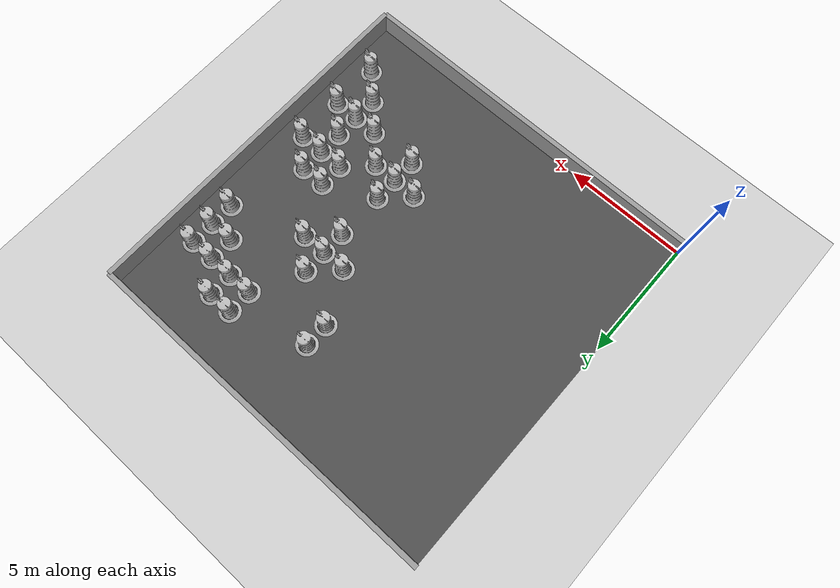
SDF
<sdf version="1.4">
 <world name="default">
  <include><uri>model://ground_plane</uri></include>
  <include><uri>model://sun</uri></include>
  <model name="grey_wall">
   <static>1</static>
   <link name="link">
    <visual name="visual">
     <cast_shadows>0</cast_shadows>
     <geometry><box><size>15 0.2 2</size></box></geometry>
     <material>
      <script>
       <uri>model://grey_wall/materials/scripts</uri>
       <uri>model://grey_wall/materials/textures</uri>
       <name>vrc/grey_wall</name>
      </script>
     </material>
    </visual>
   </link>
   <pose>7.5 0 0 0 0 0</pose>
  </model>
  <model name="grey_wall">
   <static>1</static>
   <link name="link">
    <visual name="visual">
     <cast_shadows>0</cast_shadows>
     <geometry><box><size>15 0.2 2</size></box></geometry>
     <material>
      <script>
       <uri>model://grey_wall/materials/scripts</uri>
       <uri>model://grey_wall/materials/textures</uri>
       <name>vrc/grey_wall</name>
      </script>
     </material>
    </visual>
   </link>
   <pose>15 7.5 0 0 0 -1.57079632679</pose>
  </model>
  <model name="grey_wall">
   <static>1</static>
   <link name="link">
    <visual name="visual">
     <cast_shadows>0</cast_shadows>
     <geometry><box><size>15 0.2 2</size></box></geometry>
     <material>
      <script>
       <uri>model://grey_wall/materials/scripts</uri>
       <uri>model://grey_wall/materials/textures</uri>
       <name>vrc/grey_wall</name>
      </script>
     </material>
    </visual>
   </link>
   <pose>7.5 15 0 0 0 3.14159265359</pose>
  </model>
  <model name="asphalt_plane">
   <static>1</static>
   <link name="link">
    <visual name="visual">
     <cast_shadows>0</cast_shadows>
     <geometry><box><size>15 15 0.1</size></box></geometry>
     <material>
      <script>
       <uri>model://asphalt_plane/materials/scripts</uri>
       <uri>model://asphalt_plane/materials/textures</uri>
       <name>vrc/asphalt</name>
      </script>
     </material>
    </visual>
   </link>
   <pose>7.5 7.5 0 0 0 0</pose>
  </model>
  <model name="Construction Barrel">
   <link name="link">
    <collision name="collision">
     <geometry>
      <mesh><uri>model://construction_barrel/meshes/construction_barrel.dae</uri><scale>1 1 1</scale></mesh>
     </geometry>
    </collision>
    <visual name="visual">
     <geometry><mesh><uri>model://construction_barrel/meshes/construction_barrel.dae</uri></mesh></geometry>
    </visual>
   </link>
   <pose>8 11 0 0 0 0</pose>
   <static>1</static>
  </model>
  <model name="Construction Barrel">
   <link name="link">
    <collision name="collision">
     <geometry>
      <mesh><uri>model://construction_barrel/meshes/construction_barrel.dae</uri><scale>1 1 1</scale></mesh>
     </geometry>
    </collision>
    <visual name="visual">
     <geometry><mesh><uri>model://construction_barrel/meshes/construction_barrel.dae</uri></mesh></geometry>
    </visual>
   </link>
   <pose>8 12 0 0 0 0</pose>
   <static>1</static>
  </model>
  <model name="Construction Barrel">
   <link name="link">
    <collision name="collision">
     <geometry>
      <mesh><uri>model://construction_barrel/meshes/construction_barrel.dae</uri><scale>1 1 1</scale></mesh>
     </geometry>
    </collision>
    <visual name="visual">
     <geometry><mesh><uri>model://construction_barrel/meshes/construction_barrel.dae</uri></mesh></geometry>
    </visual>
   </link>
   <pose>9 5 0 0 0 0</pose>
   <static>1</static>
  </model>
  <model name="Construction Barrel">
   <link name="link">
    <collision name="collision">
     <geometry>
      <mesh><uri>model://construction_barrel/meshes/construction_barrel.dae</uri><scale>1 1 1</scale></mesh>
     </geometry>
    </collision>
    <visual name="visual">
     <geometry><mesh><uri>model://construction_barrel/meshes/construction_barrel.dae</uri></mesh></geometry>
    </visual>
   </link>
   <pose>9 9 0 0 0 0</pose>
   <static>1</static>
  </model>
  <model name="Construction Barrel">
   <link name="link">
    <collision name="collision">
     <geometry>
      <mesh><uri>model://construction_barrel/meshes/construction_barrel.dae</uri><scale>1 1 1</scale></mesh>
     </geometry>
    </collision>
    <visual name="visual">
     <geometry><mesh><uri>model://construction_barrel/meshes/construction_barrel.dae</uri></mesh></geometry>
    </visual>
   </link>
   <pose>10 4 0 0 0 0</pose>
   <static>1</static>
  </model>
  <model name="Construction Barrel">
   <link name="link">
    <collision name="collision">
     <geometry>
      <mesh><uri>model://construction_barrel/meshes/construction_barrel.dae</uri><scale>1 1 1</scale></mesh>
     </geometry>
    </collision>
    <visual name="visual">
     <geometry><mesh><uri>model://construction_barrel/meshes/construction_barrel.dae</uri></mesh></geometry>
    </visual>
   </link>
   <pose>10 5 0 0 0 0</pose>
   <static>1</static>
  </model>
  <model name="Construction Barrel">
   <link name="link">
    <collision name="collision">
     <geometry>
      <mesh><uri>model://construction_barrel/meshes/construction_barrel.dae</uri><scale>1 1 1</scale></mesh>
     </geometry>
    </collision>
    <visual name="visual">
     <geometry><mesh><uri>model://construction_barrel/meshes/construction_barrel.dae</uri></mesh></geometry>
    </visual>
   </link>
   <pose>10 6 0 0 0 0</pose>
   <static>1</static>
  </model>
  <model name="Construction Barrel">
   <link name="link">
    <collision name="collision">
     <geometry>
      <mesh><uri>model://construction_barrel/meshes/construction_barrel.dae</uri><scale>1 1 1</scale></mesh>
     </geometry>
    </collision>
    <visual name="visual">
     <geometry><mesh><uri>model://construction_barrel/meshes/construction_barrel.dae</uri></mesh></geometry>
    </visual>
   </link>
   <pose>10 8 0 0 0 0</pose>
   <static>1</static>
  </model>
  <model name="Construction Barrel">
   <link name="link">
    <collision name="collision">
     <geometry>
      <mesh><uri>model://construction_barrel/meshes/construction_barrel.dae</uri><scale>1 1 1</scale></mesh>
     </geometry>
    </collision>
    <visual name="visual">
     <geometry><mesh><uri>model://construction_barrel/meshes/construction_barrel.dae</uri></mesh></geometry>
    </visual>
   </link>
   <pose>10 9 0 0 0 0</pose>
   <static>1</static>
  </model>
  <model name="Construction Barrel">
   <link name="link">
    <collision name="collision">
     <geometry>
      <mesh><uri>model://construction_barrel/meshes/construction_barrel.dae</uri><scale>1 1 1</scale></mesh>
     </geometry>
    </collision>
    <visual name="visual">
     <geometry><mesh><uri>model://construction_barrel/meshes/construction_barrel.dae</uri></mesh></geometry>
    </visual>
   </link>
   <pose>10 10 0 0 0 0</pose>
   <static>1</static>
  </model>
  <model name="Construction Barrel">
   <link name="link">
    <collision name="collision">
     <geometry>
      <mesh><uri>model://construction_barrel/meshes/construction_barrel.dae</uri><scale>1 1 1</scale></mesh>
     </geometry>
    </collision>
    <visual name="visual">
     <geometry><mesh><uri>model://construction_barrel/meshes/construction_barrel.dae</uri></mesh></geometry>
    </visual>
   </link>
   <pose>11 5 0 0 0 0</pose>
   <static>1</static>
  </model>
  <model name="Construction Barrel">
   <link name="link">
    <collision name="collision">
     <geometry>
      <mesh><uri>model://construction_barrel/meshes/construction_barrel.dae</uri><scale>1 1 1</scale></mesh>
     </geometry>
    </collision>
    <visual name="visual">
     <geometry><mesh><uri>model://construction_barrel/meshes/construction_barrel.dae</uri></mesh></geometry>
    </visual>
   </link>
   <pose>11 9 0 0 0 0</pose>
   <static>1</static>
  </model>
  <model name="Construction Barrel">
   <link name="link">
    <collision name="collision">
     <geometry>
      <mesh><uri>model://construction_barrel/meshes/construction_barrel.dae</uri><scale>1 1 1</scale></mesh>
     </geometry>
    </collision>
    <visual name="visual">
     <geometry><mesh><uri>model://construction_barrel/meshes/construction_barrel.dae</uri></mesh></geometry>
    </visual>
   </link>
   <pose>11 12 0 0 0 0</pose>
   <static>1</static>
  </model>
  <model name="Construction Barrel">
   <link name="link">
    <collision name="collision">
     <geometry>
      <mesh><uri>model://construction_barrel/meshes/construction_barrel.dae</uri><scale>1 1 1</scale></mesh>
     </geometry>
    </collision>
    <visual name="visual">
     <geometry><mesh><uri>model://construction_barrel/meshes/construction_barrel.dae</uri></mesh></geometry>
    </visual>
   </link>
   <pose>11 13 0 0 0 0</pose>
   <static>1</static>
  </model>
  <model name="Construction Barrel">
   <link name="link">
    <collision name="collision">
     <geometry>
      <mesh><uri>model://construction_barrel/meshes/construction_barrel.dae</uri><scale>1 1 1</scale></mesh>
     </geometry>
    </collision>
    <visual name="visual">
     <geometry><mesh><uri>model://construction_barrel/meshes/construction_barrel.dae</uri></mesh></geometry>
    </visual>
   </link>
   <pose>12 4 0 0 0 0</pose>
   <static>1</static>
  </model>
  <model name="Construction Barrel">
   <link name="link">
    <collision name="collision">
     <geometry>
      <mesh><uri>model://construction_barrel/meshes/construction_barrel.dae</uri><scale>1 1 1</scale></mesh>
     </geometry>
    </collision>
    <visual name="visual">
     <geometry><mesh><uri>model://construction_barrel/meshes/construction_barrel.dae</uri></mesh></geometry>
    </visual>
   </link>
   <pose>12 6 0 0 0 0</pose>
   <static>1</static>
  </model>
  <model name="Construction Barrel">
   <link name="link">
    <collision name="collision">
     <geometry>
      <mesh><uri>model://construction_barrel/meshes/construction_barrel.dae</uri><scale>1 1 1</scale></mesh>
     </geometry>
    </collision>
    <visual name="visual">
     <geometry><mesh><uri>model://construction_barrel/meshes/construction_barrel.dae</uri></mesh></geometry>
    </visual>
   </link>
   <pose>12 7 0 0 0 0</pose>
   <static>1</static>
  </model>
  <model name="Construction Barrel">
   <link name="link">
    <collision name="collision">
     <geometry>
      <mesh><uri>model://construction_barrel/meshes/construction_barrel.dae</uri><scale>1 1 1</scale></mesh>
     </geometry>
    </collision>
    <visual name="visual">
     <geometry><mesh><uri>model://construction_barrel/meshes/construction_barrel.dae</uri></mesh></geometry>
    </visual>
   </link>
   <pose>12 12 0 0 0 0</pose>
   <static>1</static>
  </model>
  <model name="Construction Barrel">
   <link name="link">
    <collision name="collision">
     <geometry>
      <mesh><uri>model://construction_barrel/meshes/construction_barrel.dae</uri><scale>1 1 1</scale></mesh>
     </geometry>
    </collision>
    <visual name="visual">
     <geometry><mesh><uri>model://construction_barrel/meshes/construction_barrel.dae</uri></mesh></geometry>
    </visual>
   </link>
   <pose>12 13 0 0 0 0</pose>
   <static>1</static>
  </model>
  <model name="Construction Barrel">
   <link name="link">
    <collision name="collision">
     <geometry>
      <mesh><uri>model://construction_barrel/meshes/construction_barrel.dae</uri><scale>1 1 1</scale></mesh>
     </geometry>
    </collision>
    <visual name="visual">
     <geometry><mesh><uri>model://construction_barrel/meshes/construction_barrel.dae</uri></mesh></geometry>
    </visual>
   </link>
   <pose>13 3 0 0 0 0</pose>
   <static>1</static>
  </model>
  <model name="Construction Barrel">
   <link name="link">
    <collision name="collision">
     <geometry>
      <mesh><uri>model://construction_barrel/meshes/construction_barrel.dae</uri><scale>1 1 1</scale></mesh>
     </geometry>
    </collision>
    <visual name="visual">
     <geometry><mesh><uri>model://construction_barrel/meshes/construction_barrel.dae</uri></mesh></geometry>
    </visual>
   </link>
   <pose>13 4 0 0 0 0</pose>
   <static>1</static>
  </model>
  <model name="Construction Barrel">
   <link name="link">
    <collision name="collision">
     <geometry>
      <mesh><uri>model://construction_barrel/meshes/construction_barrel.dae</uri><scale>1 1 1</scale></mesh>
     </geometry>
    </collision>
    <visual name="visual">
     <geometry><mesh><uri>model://construction_barrel/meshes/construction_barrel.dae</uri></mesh></geometry>
    </visual>
   </link>
   <pose>13 5 0 0 0 0</pose>
   <static>1</static>
  </model>
  <model name="Construction Barrel">
   <link name="link">
    <collision name="collision">
     <geometry>
      <mesh><uri>model://construction_barrel/meshes/construction_barrel.dae</uri><scale>1 1 1</scale></mesh>
     </geometry>
    </collision>
    <visual name="visual">
     <geometry><mesh><uri>model://construction_barrel/meshes/construction_barrel.dae</uri></mesh></geometry>
    </visual>
   </link>
   <pose>13 6 0 0 0 0</pose>
   <static>1</static>
  </model>
  <model name="Construction Barrel">
   <link name="link">
    <collision name="collision">
     <geometry>
      <mesh><uri>model://construction_barrel/meshes/construction_barrel.dae</uri><scale>1 1 1</scale></mesh>
     </geometry>
    </collision>
    <visual name="visual">
     <geometry><mesh><uri>model://construction_barrel/meshes/construction_barrel.dae</uri></mesh></geometry>
    </visual>
   </link>
   <pose>13 7 0 0 0 0</pose>
   <static>1</static>
  </model>
  <model name="Construction Barrel">
   <link name="link">
    <collision name="collision">
     <geometry>
      <mesh><uri>model://construction_barrel/meshes/construction_barrel.dae</uri><scale>1 1 1</scale></mesh>
     </geometry>
    </collision>
    <visual name="visual">
     <geometry><mesh><uri>model://construction_barrel/meshes/construction_barrel.dae</uri></mesh></geometry>
    </visual>
   </link>
   <pose>13 11 0 0 0 0</pose>
   <static>1</static>
  </model>
  <model name="Construction Barrel">
   <link name="link">
    <collision name="collision">
     <geometry>
      <mesh><uri>model://construction_barrel/meshes/construction_barrel.dae</uri><scale>1 1 1</scale></mesh>
     </geometry>
    </collision>
    <visual name="visual">
     <geometry><mesh><uri>model://construction_barrel/meshes/construction_barrel.dae</uri></mesh></geometry>
    </visual>
   </link>
   <pose>13 12 0 0 0 0</pose>
   <static>1</static>
  </model>
  <model name="Construction Barrel">
   <link name="link">
    <collision name="collision">
     <geometry>
      <mesh><uri>model://construction_barrel/meshes/construction_barrel.dae</uri><scale>1 1 1</scale></mesh>
     </geometry>
    </collision>
    <visual name="visual">
     <geometry><mesh><uri>model://construction_barrel/meshes/construction_barrel.dae</uri></mesh></geometry>
    </visual>
   </link>
   <pose>14 2 0 0 0 0</pose>
   <static>1</static>
  </model>
  <model name="Construction Barrel">
   <link name="link">
    <collision name="collision">
     <geometry>
      <mesh><uri>model://construction_barrel/meshes/construction_barrel.dae</uri><scale>1 1 1</scale></mesh>
     </geometry>
    </collision>
    <visual name="visual">
     <geometry><mesh><uri>model://construction_barrel/meshes/construction_barrel.dae</uri></mesh></geometry>
    </visual>
   </link>
   <pose>14 4 0 0 0 0</pose>
   <static>1</static>
  </model>
  <model name="Construction Barrel">
   <link name="link">
    <collision name="collision">
     <geometry>
      <mesh><uri>model://construction_barrel/meshes/construction_barrel.dae</uri><scale>1 1 1</scale></mesh>
     </geometry>
    </collision>
    <visual name="visual">
     <geometry><mesh><uri>model://construction_barrel/meshes/construction_barrel.dae</uri></mesh></geometry>
    </visual>
   </link>
   <pose>14 6 0 0 0 0</pose>
   <static>1</static>
  </model>
  <model name="Construction Barrel">
   <link name="link">
    <collision name="collision">
     <geometry>
      <mesh><uri>model://construction_barrel/meshes/construction_barrel.dae</uri><scale>1 1 1</scale></mesh>
     </geometry>
    </collision>
    <visual name="visual">
     <geometry><mesh><uri>model://construction_barrel/meshes/construction_barrel.dae</uri></mesh></geometry>
    </visual>
   </link>
   <pose>14 10 0 0 0 0</pose>
   <static>1</static>
  </model>
  <model name="Construction Barrel">
   <link name="link">
    <collision name="collision">
     <geometry>
      <mesh><uri>model://construction_barrel/meshes/construction_barrel.dae</uri><scale>1 1 1</scale></mesh>
     </geometry>
    </collision>
    <visual name="visual">
     <geometry><mesh><uri>model://construction_barrel/meshes/construction_barrel.dae</uri></mesh></geometry>
    </visual>
   </link>
   <pose>14 11 0 0 0 0</pose>
   <static>1</static>
  </model>
  <model name="Construction Barrel">
   <link name="link">
    <collision name="collision">
     <geometry>
      <mesh><uri>model://construction_barrel/meshes/construction_barrel.dae</uri><scale>1 1 1</scale></mesh>
     </geometry>
    </collision>
    <visual name="visual">
     <geometry><mesh><uri>model://construction_barrel/meshes/construction_barrel.dae</uri></mesh></geometry>
    </visual>
   </link>
   <pose>14 12 0 0 0 0</pose>
   <static>1</static>
  </model>
 </world>
</sdf>
